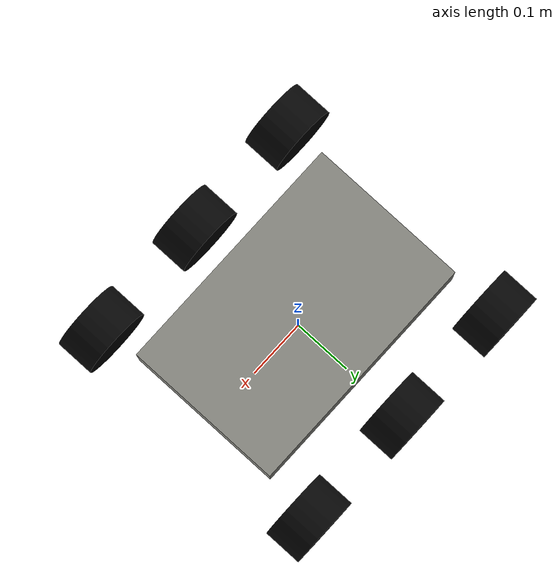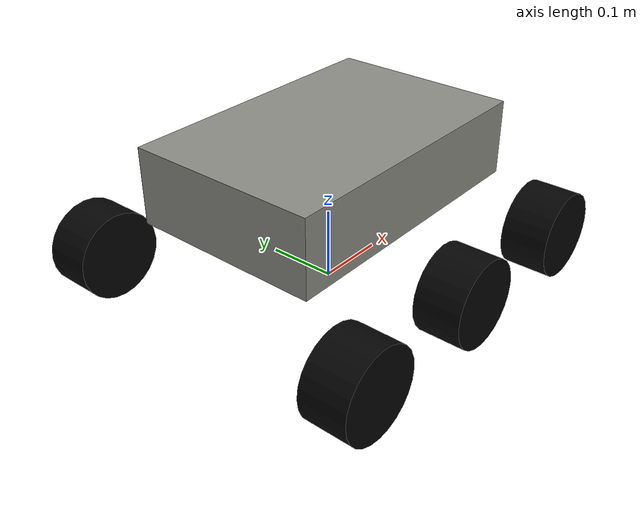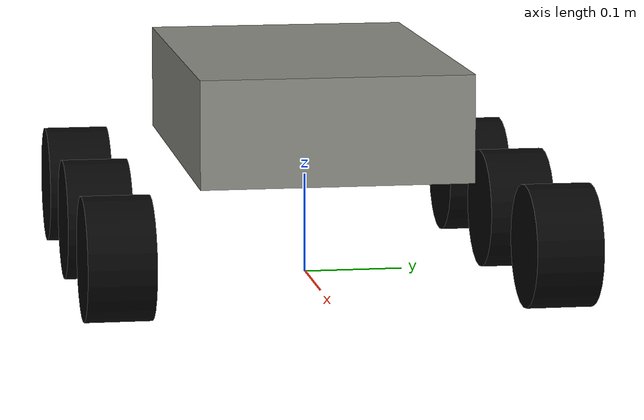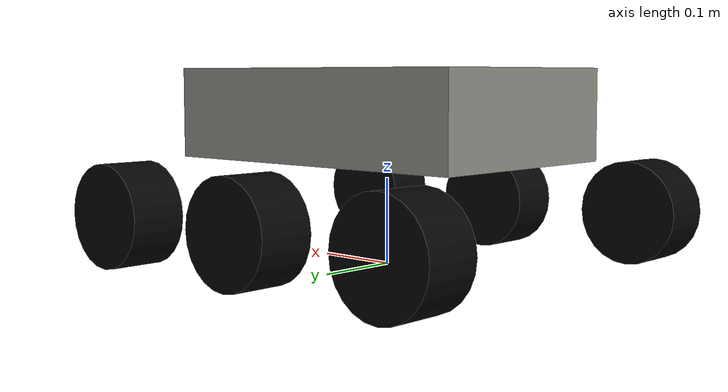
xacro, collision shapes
<?xml version="1.0"?>
<robot name="brover_e5" xmlns:xacro="http://www.ros.org/wiki/xacro">
  <xacro:arg
    name="mesh_dir"
    default="package://brover_simulation/meshes"/>

  <xacro:arg name="imu_rate" default="100.0"/>
  <xacro:arg name="camera_width" default="640"/>
  <xacro:arg name="camera_height" default="480"/>
  <xacro:arg name="camera_rate" default="30.0"/>
  <xacro:arg name="camera_horizontal_fov" default="1.047"/>

  <link name="imu_link"/>
  <joint name="imu_joint" type="fixed">
    <parent link="base_link"/>
    <child link="imu_link"/>
    <origin xyz="0 0 0.035" rpy="0 0 0"/>
  </joint>
  <gazebo reference="base_link">
    <sensor name="imu_sensor" type="imu">
      <pose>0 0 0.035 0 0 0</pose>
      <topic>/bhi360/imu</topic>
      <gz_frame_id>imu_link</gz_frame_id>
      <always_on>true</always_on>
      <update_rate>$(arg imu_rate)</update_rate>
    </sensor>
  </gazebo>

  <material name="body_grey">
    <color rgba="0.55 0.55 0.52 1.0"/>
  </material>
  <material name="metal_dark">
    <color rgba="0.16 0.16 0.15 1.0"/>
  </material>
  <material name="wheel_black">
    <color rgba="0.02 0.02 0.02 1.0"/>
  </material>
  <material name="sensor_dark">
    <color rgba="0.03 0.035 0.04 1.0"/>
  </material>

  <!-- CAD assembly bounding box, converted from mm to m:
       x: 0.036983..0.576981, y: -0.137456..0.353926, z: 0.086943..0.344930. -->
  <xacro:property name="cad_center_x" value="0.30698204040527345"/>
  <xacro:property name="cad_center_y" value="0.10823530578613282"/>
  <xacro:property name="cad_min_z" value="0.08694290924072266"/>

  <xacro:property name="base_z" value="0.14"/>
  <xacro:property name="body_length" value="0.405"/>
  <xacro:property name="body_width" value="0.265"/>
  <xacro:property name="body_height" value="0.105"/>

  <xacro:property name="wheel_radius" value="0.060"/>
  <xacro:property name="wheel_width" value="0.065"/>
  <xacro:property name="wheel_y" value="0.2132"/>
  <xacro:property name="wheel_separation" value="0.572"/>
  <xacro:property name="wheel_z" value="-0.080"/>
  <xacro:property name="front_wheel_x" value="0.210"/>
  <xacro:property name="middle_wheel_x" value="0.0"/>
  <xacro:property name="rear_wheel_x" value="-0.210"/>

  <material name="mat_collision">
    <color rgba="0.05 0.05 0.05 0.0"/>
  </material>

  <xacro:macro name="box_inertial" params="mass x y z">
    <inertial>
      <mass value="${mass}"/>
      <inertia
        ixx="${mass * (y*y + z*z) / 12.0}" ixy="0" ixz="0"
        iyy="${mass * (x*x + z*z) / 12.0}" iyz="0"
        izz="${mass * (x*x + y*y) / 12.0}"/>
    </inertial>
  </xacro:macro>

  <xacro:macro name="wheel_inertial" params="mass radius width">
    <inertial>
      <mass value="${mass}"/>
      <inertia
        ixx="${mass * (3.0 * radius * radius + width * width) / 12.0}" ixy="0" ixz="0"
        iyy="${mass * radius * radius / 2.0}" iyz="0"
        izz="${mass * (3.0 * radius * radius + width * width) / 12.0}"/>
    </inertial>
  </xacro:macro>

  <link name="base_footprint"/>

  <joint name="base_footprint_joint" type="fixed">
    <parent link="base_footprint"/>
    <child link="base_link"/>
    <origin xyz="0 0 ${base_z}" rpy="0 0 0"/>
  </joint>

  <link name="base_link">
    <visual name="body_visual">
      <origin xyz="0.005 0 0.035" rpy="0 0 0"/>
      <geometry>
        <box size="${body_length} ${body_width} ${body_height}"/>
      </geometry>
      <material name="body_grey"/>
    </visual>
    <visual name="differential_cad_visual">
      <origin
        xyz="-${cad_center_x} -${cad_center_y} ${-base_z - cad_min_z}"
        rpy="0 0 0"/>
      <geometry>
        <mesh
          filename="$(arg mesh_dir)/Rover-E5-differential.stl"
          scale="0.001 0.001 0.001"/>
      </geometry>
      <material name="metal_dark"/>
    </visual>
    <visual name="suspension_cad_visual">
      <origin
        xyz="-${cad_center_x} -${cad_center_y} ${-base_z - cad_min_z}"
        rpy="0 0 0"/>
      <geometry>
        <mesh
          filename="$(arg mesh_dir)/Rover-E5-suspension.stl"
          scale="0.001 0.001 0.001"/>
      </geometry>
      <material name="metal_dark"/>
    </visual>
    <visual name="lidar_base_visual">
      <origin xyz="0.102 0 0.118" rpy="0 0 0"/>
      <geometry>
        <box size="0.096 0.070 0.012"/>
      </geometry>
      <material name="sensor_dark"/>
    </visual>
    <visual name="lidar_post_front_left_visual">
      <origin xyz="0.14056 0.028 0.108" rpy="0 0 0"/>
      <geometry>
        <cylinder radius="0.0032" length="0.041"/>
      </geometry>
      <material name="metal_dark"/>
    </visual>
    <visual name="lidar_post_front_right_visual">
      <origin xyz="0.14056 -0.028 0.108" rpy="0 0 0"/>
      <geometry>
        <cylinder radius="0.0032" length="0.041"/>
      </geometry>
      <material name="metal_dark"/>
    </visual>
    <visual name="lidar_post_rear_left_visual">
      <origin xyz="0.07056 0.020 0.108" rpy="0 0 0"/>
      <geometry>
        <cylinder radius="0.0032" length="0.041"/>
      </geometry>
      <material name="metal_dark"/>
    </visual>
    <visual name="lidar_post_rear_right_visual">
      <origin xyz="0.07056 -0.020 0.108" rpy="0 0 0"/>
      <geometry>
        <cylinder radius="0.0032" length="0.041"/>
      </geometry>
      <material name="metal_dark"/>
    </visual>
    <visual name="lidar_lower_body_visual">
      <origin xyz="0.113 0 0.130" rpy="0 0 0"/>
      <geometry>
        <cylinder radius="0.035" length="0.018"/>
      </geometry>
      <material name="sensor_dark"/>
    </visual>
    <visual name="lidar_upper_body_visual">
      <origin xyz="0.113 0 0.149" rpy="0 0 0"/>
      <geometry>
        <cylinder radius="0.033" length="0.025"/>
      </geometry>
      <material name="sensor_dark"/>
    </visual>
    <visual name="lidar_front_notch_visual">
      <origin xyz="0.069 0 0.132" rpy="0 0 0"/>
      <geometry>
        <box size="0.018 0.020 0.018"/>
      </geometry>
      <material name="sensor_dark"/>
    </visual>
    <visual name="front_camera_cad_visual">
      <origin
        xyz="-0.306432 -0.103998 ${-base_z - cad_min_z}"
        rpy="0 0 0"/>
      <geometry>
        <mesh
          filename="$(arg mesh_dir)/Rover-E5-front-camera.stl"
          scale="0.001 0.001 0.001"/>
      </geometry>
      <material name="sensor_dark"/>
    </visual>
    <collision name="body_collision">
      <origin xyz="0.005 0 0.035" rpy="0 0 0"/>
      <geometry>
        <box size="${body_length} ${body_width} ${body_height}"/>
      </geometry>
    </collision>
    <xacro:box_inertial mass="8.0" x="${body_length}" y="${body_width}" z="${body_height}"/>
  </link>

  <link name="lidar_link"/>
  <joint name="lidar_joint" type="fixed">
    <parent link="base_link"/>
    <child link="lidar_link"/>
    <origin xyz="0.113 0 0.149" rpy="0 0 3.141592653589793"/>
  </joint>

  <link name="front_camera_link"/>
  <joint name="front_camera_joint" type="fixed">
    <parent link="base_link"/>
    <child link="front_camera_link"/>
    <origin xyz="0.213 0 0.057" rpy="0 0 0"/>
  </joint>

  <!-- Optical axes: X right, Y down, Z forward. Sensor pose is unchanged. -->
  <link name="front_camera_optical_frame"/>
  <joint name="front_camera_optical_joint" type="fixed">
    <parent link="front_camera_link"/>
    <child link="front_camera_optical_frame"/>
    <origin xyz="0 0 0" rpy="-1.5707963267948966 0 -1.5707963267948966"/>
  </joint>

  <xacro:macro name="drive_wheel" params="name mesh_name x y_pos">
    <link name="${name}_wheel_link">
      <visual name="${name}_wheel_visual">
        <origin xyz="0 0 0" rpy="0 0 0"/>
        <geometry>
          <mesh
            filename="$(arg mesh_dir)/${mesh_name}"
            scale="0.001 0.001 0.001"/>
        </geometry>
        <material name="wheel_black"/>
      </visual>
      <collision name="${name}_wheel_collision">
        <origin xyz="0 0 0" rpy="1.5707963267948966 0 0"/>
        <geometry>
          <cylinder radius="${wheel_radius}" length="${wheel_width}"/>
        </geometry>
      </collision>
      <xacro:wheel_inertial mass="0.7" radius="${wheel_radius}" width="${wheel_width}"/>
    </link>

    <joint name="${name}_wheel_joint" type="continuous">
      <parent link="base_link"/>
      <child link="${name}_wheel_link"/>
      <origin xyz="${x} ${y_pos} ${wheel_z}" rpy="0 0 0"/>
      <axis xyz="0 1 0"/>
      <dynamics damping="0.02" friction="0.01"/>
    </joint>
  </xacro:macro>

  <xacro:drive_wheel
    name="front_left" mesh_name="Rover-E5-front-left-wheel.stl"
    x="${front_wheel_x}" y_pos="${wheel_y}"/>
  <xacro:drive_wheel
    name="middle_left" mesh_name="Rover-E5-middle-left-wheel.stl"
    x="${middle_wheel_x}" y_pos="${wheel_y}"/>
  <xacro:drive_wheel
    name="rear_left" mesh_name="Rover-E5-rear-left-wheel.stl"
    x="${rear_wheel_x}" y_pos="${wheel_y}"/>
  <xacro:drive_wheel
    name="front_right" mesh_name="Rover-E5-front-right-wheel.stl"
    x="${front_wheel_x}" y_pos="-${wheel_y}"/>
  <xacro:drive_wheel
    name="middle_right" mesh_name="Rover-E5-middle-right-wheel.stl"
    x="${middle_wheel_x}" y_pos="-${wheel_y}"/>
  <xacro:drive_wheel
    name="rear_right" mesh_name="Rover-E5-rear-right-wheel.stl"
    x="${rear_wheel_x}" y_pos="-${wheel_y}"/>

  <gazebo>
    <plugin filename="gz-sim-joint-state-publisher-system" name="gz::sim::systems::JointStatePublisher">
      <topic>/joint_states</topic>
      <update_rate>30</update_rate>
      <joint_name>front_left_wheel_joint</joint_name>
      <joint_name>middle_left_wheel_joint</joint_name>
      <joint_name>rear_left_wheel_joint</joint_name>
      <joint_name>front_right_wheel_joint</joint_name>
      <joint_name>middle_right_wheel_joint</joint_name>
      <joint_name>rear_right_wheel_joint</joint_name>
    </plugin>
    <plugin filename="gz-sim-diff-drive-system" name="gz::sim::systems::DiffDrive">
      <left_joint>front_left_wheel_joint</left_joint>
      <left_joint>middle_left_wheel_joint</left_joint>
      <left_joint>rear_left_wheel_joint</left_joint>
      <right_joint>front_right_wheel_joint</right_joint>
      <right_joint>middle_right_wheel_joint</right_joint>
      <right_joint>rear_right_wheel_joint</right_joint>
      <wheel_separation>${wheel_separation}</wheel_separation>
      <wheel_radius>${wheel_radius}</wheel_radius>
      <topic>/cmd_vel</topic>
      <odom_topic>/odom</odom_topic>
      <tf_topic>/tf</tf_topic>
      <frame_id>odom</frame_id>
      <child_frame_id>base_footprint</child_frame_id>
      <odom_publish_frequency>30</odom_publish_frequency>
      <min_linear_velocity>-1.0</min_linear_velocity>
      <max_linear_velocity>1.0</max_linear_velocity>
      <min_angular_velocity>-2.0</min_angular_velocity>
      <max_angular_velocity>2.0</max_angular_velocity>
      <min_linear_acceleration>-1.5</min_linear_acceleration>
      <max_linear_acceleration>1.5</max_linear_acceleration>
      <min_angular_acceleration>-3.0</min_angular_acceleration>
      <max_angular_acceleration>3.0</max_angular_acceleration>
    </plugin>
  </gazebo>

  <gazebo reference="lidar_link">
    <sensor name="lidar" type="gpu_lidar">
      <topic>/scan</topic>
      <update_rate>10</update_rate>
      <always_on>true</always_on>
      <visualize>true</visualize>
      <ray>
        <scan>
          <horizontal>
            <samples>360</samples>
            <resolution>1</resolution>
            <min_angle>-3.14159</min_angle>
            <max_angle>3.14159</max_angle>
          </horizontal>
        </scan>
        <range>
          <min>0.12</min>
          <max>12.0</max>
          <resolution>0.01</resolution>
        </range>
        <noise>
          <type>gaussian</type>
          <mean>0.0</mean>
          <stddev>0.01</stddev>
        </noise>
      </ray>
    </sensor>
  </gazebo>

  <gazebo reference="front_camera_link">
    <sensor name="front_camera" type="camera">
      <topic>/camera1/image_raw</topic>
      <update_rate>$(arg camera_rate)</update_rate>
      <always_on>true</always_on>
      <visualize>true</visualize>
      <camera>
        <horizontal_fov>$(arg camera_horizontal_fov)</horizontal_fov>
        <image>
          <width>$(arg camera_width)</width>
          <height>$(arg camera_height)</height>
          <format>R8G8B8</format>
        </image>
        <clip>
          <near>0.05</near>
          <far>30.0</far>
        </clip>
      </camera>
    </sensor>
  </gazebo>
</robot>
